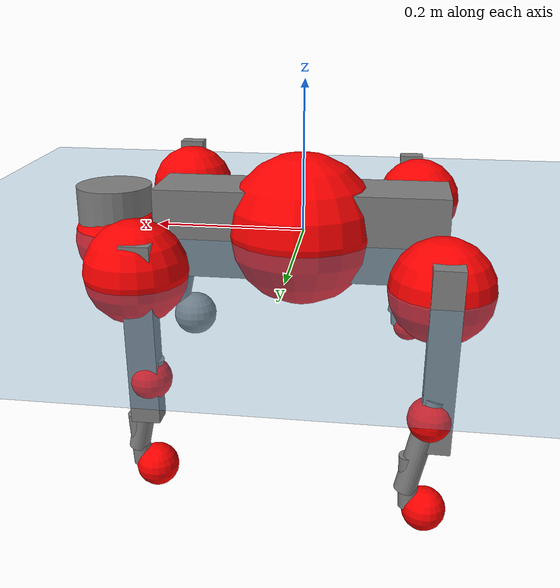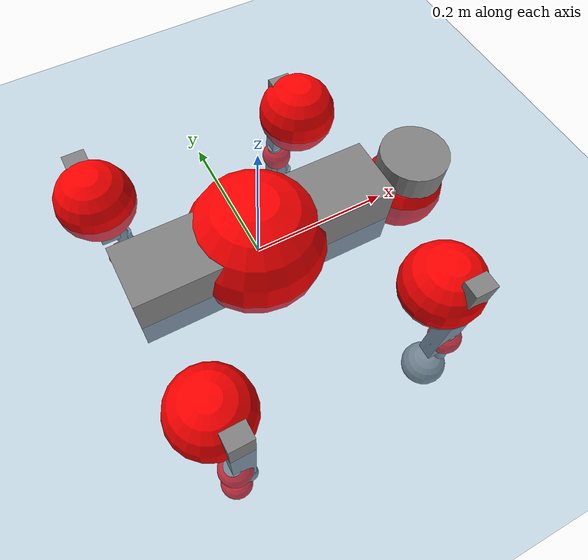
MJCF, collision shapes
<mujoco model="go2">
  <compiler angle="radian" assetdir="assets" balanceinertia="true" inertiafromgeom="false"/>

  <option timestep="0.005" density="1.2" viscosity="2e-05"/>

  <size nkey="1"/>

  <visual>
    <quality shadowsize="8192"/>
    <map shadowclip="0.5"/>
  </visual>

  <default>
    <default class="/">
      <geom contype="0" conaffinity="0" group="1" solref="-1000 -80"/>
      <site size="0.01 0.005 0.005" group="5"/>
      <general forcelimited="true" biastype="affine" gainprm="20" biasprm="0 -20 -0.5"/>
      <default class="go2">
        <joint armature="0.01" damping="0.01" frictionloss="0.2"/>
        <geom condim="1" margin="0.001"/>
        <default class="visual">
          <geom type="mesh" group="2"/>
        </default>
        <default class="collision">
          <geom group="3"/>
          <default class="foot">
            <geom size="0.022 0 0" condim="6" priority="1" friction="0.8 0.02 0.01" solimp="0.015 1 0.022"/>
          </default>
        </default>
        <default class="reward_collision_sphere">
          <geom group="5" rgba="1 0 0 1"/>
        </default>
      </default>
    </default>
  </default>

  <asset>
    <texture type="skybox" colorspace="auto" name="//unnamed_texture_0" builtin="gradient" rgb1="0.95 0.95 0.95" rgb2="0.95 0.95 0.95" width="100" height="600"/>
    <texture type="2d" colorspace="auto" name="texplane" builtin="checker" rgb1="0.345 0.575 0.748" rgb2="0.345 0.575 0.748" markrgb="1 1 1" width="512" height="512"/>
    <material name="MatPlane" class="/" texture="texplane" texuniform="true" texrepeat="2 2" specular="0.9"/>
    <material name="metal" class="/" rgba="0.9 0.95 0.95 1"/>
    <material name="black" class="/" rgba="0 0 0 1"/>
    <material name="white" class="/"/>
    <material name="gray" class="/" rgba="0.671705 0.692426 0.77427 1"/>
    <mesh name="base_0" class="/" file="base_0.obj"/>
    <mesh name="base_1" class="/" file="base_1.obj"/>
    <mesh name="base_2" class="/" file="base_2.obj"/>
    <mesh name="base_3" class="/" file="base_3.obj"/>
    <mesh name="base_4" class="/" file="base_4.obj"/>
    <mesh name="hip_0" class="/" file="hip_0.obj"/>
    <mesh name="hip_1" class="/" file="hip_1.obj"/>
    <mesh name="thigh_0" class="/" file="thigh_0.obj"/>
    <mesh name="thigh_1" class="/" file="thigh_1.obj"/>
    <mesh name="thigh_mirror_0" class="/" file="thigh_mirror_0.obj"/>
    <mesh name="thigh_mirror_1" class="/" file="thigh_mirror_1.obj"/>
    <mesh name="calf_0" class="/" file="calf_0.obj"/>
    <mesh name="calf_1" class="/" file="calf_1.obj"/>
    <mesh name="calf_mirror_0" class="/" file="calf_mirror_0.obj"/>
    <mesh name="calf_mirror_1" class="/" file="calf_mirror_1.obj"/>
    <mesh name="foot" class="/" file="foot.obj"/>
  </asset>

  <worldbody>
    <geom name="floor" class="/" size="100 100 0.125" type="plane" group="0" material="MatPlane"/>
    <light name="toplight_shadow" class="/" pos="0 0 5" dir="0.0990148 0.0990148 -0.990148" type="directional" ambient="0.04 0.04 0.04" diffuse="0.55 0.55 0.55" specular="0.12 0.12 0.12"/>
    <light name="toplight_fill" class="/" pos="0 0 5" dir="0.0990148 0.0990148 -0.990148" type="directional" castshadow="false" ambient="0.04 0.04 0.04" diffuse="0.3 0.3 0.3" specular="0.08 0.08 0.08"/>
    <body name="trunk" childclass="go2" pos="0.000559403 0.0105977 0.00607733" quat="0.999986 0.00516029 0.00101806 -0.000860418">
      <inertial pos="0.0282129 0.0155525 -0.0139276" quat="-0.00971407 0.693166 -0.0369444 0.719765" mass="7.36024" diaginertia="0.0898874 1.21308 0.00119965"/>
      <joint name="//unnamed_joint_0" type="free" armature="0" damping="0" frictionloss="0"/>
      <geom name="//unnamed_geom_1" class="visual" material="black" mesh="base_0"/>
      <geom name="//unnamed_geom_2" class="visual" material="black" mesh="base_1"/>
      <geom name="//unnamed_geom_3" class="visual" material="black" mesh="base_2"/>
      <geom name="//unnamed_geom_4" class="visual" material="white" mesh="base_3"/>
      <geom name="//unnamed_geom_5" class="visual" material="gray" mesh="base_4"/>
      <geom name="trunk_1" class="collision" size="0.191102 0.0474962 0.0579098" type="box"/>
      <geom name="trunk_2" class="collision" size="0.050798 0.0457182" pos="0.256533 0 0.00546833" type="cylinder"/>
      <geom name="trunk_3" class="collision" size="0.0477502" pos="0.263734 0 -0.03281"/>
      <geom name="//unnamed_geom_9" class="reward_collision_sphere" size="0.101596"/>
      <geom name="//unnamed_geom_10" class="reward_collision_sphere" size="0.0609577" pos="0.252032 0 -0.0246075"/>
      <site name="imu" pos="-0.00951746 -0.00907004 0.0141721" size="0.0101596"/>
      <camera name="track" pos="0 -3.20187 0" quat="0.707107 0.707107 0 0" mode="trackcom"/>
      <camera name="ego_camera" pos="0.280836 0 0.0246075" quat="-0.5 -0.5 0.5 0.5"/>
      <body name="FL_hip" pos="0.171603 0.075258 -0.0024709" quat="1 0.000169817 3.98778e-05 0.000689677">
        <inertial pos="-0.00325812 0.0159005 -0.000270387" quat="0.431652 0.550259 0.49909 0.511665" mass="0.662541" diaginertia="0.000504878 0.00650836 2.25702e-05"/>
        <joint name="FL_hip_joint" pos="0 0 0" axis="0.998969 0.0106989 -0.0441083" range="-0.869744 1.12499" armature="0.0117733" damping="0.00195206" frictionloss="0.20506"/>
        <geom name="//unnamed_geom_11" class="visual" material="metal" mesh="hip_0"/>
        <geom name="//unnamed_geom_12" class="visual" material="gray" mesh="hip_1"/>
        <geom name="//unnamed_geom_13" class="collision" size="0.0467342 0.0203192" pos="0 0.128075 0" quat="0.707107 0.707107 0 0" type="cylinder"/>
        <geom name="//unnamed_geom_14" class="reward_collision_sphere" size="0.0609577" pos="0 0.112065 0"/>
        <body name="FL_thigh" pos="-0.0126085 0.144007 -0.00566984" quat="0.999968 -0.00251943 0.00424966 -0.00628889">
          <inertial pos="-0.0026577 -0.0517306 -0.0139345" quat="0.845299 0.0730234 -0.0393984 0.527811" mass="1.07143" diaginertia="0.00410751 0.0494677 4.24201e-05"/>
          <joint name="FL_thigh_joint" pos="0 0 0" axis="-0.0547983 0.998495 0.00220149" range="-1.3546 3.78187" armature="0.00201935" damping="0" frictionloss="0.296963"/>
          <geom name="//unnamed_geom_15" class="visual" material="metal" mesh="thigh_0"/>
          <geom name="//unnamed_geom_16" class="visual" material="gray" mesh="thigh_1"/>
          <geom name="//unnamed_geom_17" class="collision" size="0.1082 0.0124455 0.0172713" pos="0 0 -0.0582377" quat="0.707107 0 0.707107 0" type="box"/>
          <body name="FL_calf" pos="-0.00446118 -0.0044936 -0.116326" quat="0.999999 0.00089874 0.000142825 0.000496143">
            <inertial pos="0.0194369 0.00908549 -0.0649002" quat="0.73115 -0.0136867 0.000576414 0.682079" mass="0.261855" diaginertia="0.00100238 0.0141928 3.02549e-06"/>
            <joint name="FL_calf_joint" pos="0 0 0" axis="0.0245136 0.999494 -0.0202466" range="-3.04476 -1.08344" armature="0.0152494" damping="0.0763324" frictionloss="0.138882"/>
            <geom name="//unnamed_geom_18" class="visual" material="gray" mesh="calf_0"/>
            <geom name="//unnamed_geom_19" class="visual" material="black" mesh="calf_1"/>
            <geom name="FL_calf0" class="collision" size="0.0121915 0.0609577" pos="0.00720092 0 -0.03281" quat="0.994493 0 -0.104807 0" type="cylinder"/>
            <geom name="//unnamed_geom_21" class="collision" size="0.0111756 0.0330187" pos="0.0180023 0 -0.0809313" quat="0.999688 0 0.0249974 0" type="cylinder"/>
            <geom name="//unnamed_geom_22" class="visual" pos="0 0 -0.116475" quat="1 0 0 0" material="black" mesh="foot"/>
            <geom name="FL_foot" class="foot" size="0.0248357" pos="-0.00180023 0 -0.116475"/>
            <geom name="//unnamed_geom_24" class="reward_collision_sphere" size="0.025399"/>
            <geom name="//unnamed_geom_25" class="reward_collision_sphere" size="0.025399" pos="-0.00180023 0 -0.116475"/>
            <site name="FL_foot" class="foot" pos="-0.00180023 0 -0.116475" size="0.0101596"/>
          </body>
        </body>
      </body>
      <body name="FR_hip" pos="0.18995 -0.0664168 0.00868032" quat="0.999997 0.00209522 -0.00100747 -0.000472584">
        <inertial pos="-0.00139933 -0.010293 0.00767846" quat="0.491729 0.498687 0.552495 0.451955" mass="0.766497" diaginertia="0.000589556 0.00627368 2.13345e-05"/>
        <joint name="FR_hip_joint" pos="0 0 0" axis="0.998926 -0.0453672 -0.00946002" stiffness="0.0819441" range="-1.09998 0.781992" armature="0.0137501" damping="0.00628972" frictionloss="0.145354"/>
        <geom name="//unnamed_geom_26" class="visual" pos="0 9.1829e-09 3.93873e-07" quat="4.63268e-05 1 0 0" material="metal" mesh="hip_0"/>
        <geom name="//unnamed_geom_27" class="visual" pos="0 1.48866e-08 -9.74199e-07" quat="4.63268e-05 1 0 0" material="gray" mesh="hip_1"/>
        <geom name="//unnamed_geom_28" class="collision" size="0.0467342 0.0203192" pos="0 -0.128075 0" quat="0.707107 0.707107 0 0" type="cylinder"/>
        <geom name="//unnamed_geom_29" class="reward_collision_sphere" size="0.0609577" pos="0 -0.112065 0"/>
        <body name="FR_thigh" pos="0.00737596 -0.151378 0.0137439" quat="1 -1.04481e-05 -0.000970737 0.000162958">
          <inertial pos="-0.0119172 0.0459618 -0.0323817" quat="0.561134 -0.0506828 0.0779852 0.822483" mass="1.11087" diaginertia="0.00394759 0.0610246 4.26249e-05"/>
          <joint name="FR_thigh_joint" pos="0 0 0" axis="-0.0136721 -0.999873 -0.00815543" range="-3.46954 1.43871" armature="0.0165602" damping="0" frictionloss="0.304687"/>
          <geom name="//unnamed_geom_30" class="visual" material="metal" mesh="thigh_mirror_0"/>
          <geom name="//unnamed_geom_31" class="visual" material="gray" mesh="thigh_mirror_1"/>
          <geom name="//unnamed_geom_32" class="collision" size="0.1082 0.0124455 0.0172713" pos="0 0 -0.0582377" quat="0.707107 0 0.707107 0" type="box"/>
          <body name="FR_calf" pos="0.00793404 -0.000999386 -0.130413" quat="0.999997 0.00070493 3.81243e-05 0.00222212">
            <inertial pos="0.0156963 -0.00943616 -0.0803217" quat="0.67697 -0.00066792 -0.00629718 0.735984" mass="0.203294" diaginertia="0.000768343 0.0106216 2.33669e-06"/>
            <joint name="FR_calf_joint" pos="0 0 0" axis="0.011699 -0.999922 -0.00431453" range="0.708888 2.61291" armature="0.0118142" damping="0.0856771" frictionloss="0.272825"/>
            <geom name="//unnamed_geom_33" class="visual" material="gray" mesh="calf_mirror_0"/>
            <geom name="//unnamed_geom_34" class="visual" material="black" mesh="calf_mirror_1"/>
            <geom name="FR_calf0" class="collision" size="0.0132075 0.0609577" pos="0.00900115 0 -0.03281" quat="0.995004 0 -0.0998334 0" type="cylinder"/>
            <geom name="//unnamed_geom_36" class="collision" size="0.0111756 0.0330187" pos="0.0180023 0 -0.0809313" quat="0.999688 0 0.0249974 0" type="cylinder"/>
            <geom name="//unnamed_geom_37" class="visual" pos="0 0 -0.116475" quat="1 0 0 0" material="black" mesh="foot"/>
            <geom name="FR_foot" class="foot" size="0.0356453" pos="-0.00180023 0 -0.116475"/>
            <geom name="//unnamed_geom_39" class="reward_collision_sphere" size="0.025399"/>
            <geom name="//unnamed_geom_40" class="reward_collision_sphere" size="0.025399" pos="-0.00180023 0 -0.116475"/>
            <site name="FR_foot" class="foot" pos="-0.00180023 0 -0.116475" size="0.0101596"/>
          </body>
        </body>
      </body>
      <body name="RL_hip" pos="-0.175959 0.0659378 -0.0117149" quat="1 -0.000286929 -0.000375982 -0.000466515">
        <inertial pos="0.000499189 0.00778103 -0.00993245" quat="0.51855 0.50056 0.501228 0.478869" mass="0.931786" diaginertia="0.00060006 0.00755374 2.25805e-05"/>
        <joint name="RL_hip_joint" pos="0 0 0" axis="-0.999307 -0.0249327 -0.0276537" range="-1.30924 1.18031" armature="0.0125328" damping="0.0129257" frictionloss="0.081923"/>
        <geom name="//unnamed_geom_41" class="visual" pos="-3.07764e-09 0 -6.03289e-07" quat="4.63268e-05 0 1 0" material="metal" mesh="hip_0"/>
        <geom name="//unnamed_geom_42" class="visual" pos="-4.98923e-09 0 -5.35031e-07" quat="4.63268e-05 0 1 0" material="gray" mesh="hip_1"/>
        <geom name="//unnamed_geom_43" class="collision" size="0.0467342 0.0203192" pos="0 0.128075 0" quat="0.707107 0.707107 0 0" type="cylinder"/>
        <geom name="//unnamed_geom_44" class="reward_collision_sphere" size="0.0609577" pos="0 0.112065 0"/>
        <body name="RL_thigh" pos="-0.00215543 0.161301 -0.00522434" quat="0.999973 0.00472089 -0.00473277 -0.00298653">
          <inertial pos="-0.00458122 -0.0524755 -0.024412" quat="0.853241 0.114761 -0.00547122 0.508705" mass="1.42581" diaginertia="0.00387251 0.0536471 3.5194e-05"/>
          <joint name="RL_thigh_joint" pos="0 0 0" axis="0.0793949 0.996805 0.00875535" stiffness="0.0137425" range="-0.462739 4.56462" armature="0.00482233" damping="0" frictionloss="0.297323"/>
          <geom name="//unnamed_geom_45" class="visual" material="metal" mesh="thigh_0"/>
          <geom name="//unnamed_geom_46" class="visual" material="gray" mesh="thigh_1"/>
          <geom name="//unnamed_geom_47" class="collision" size="0.1082 0.0124455 0.0172713" pos="0 0 -0.0582377" quat="0.707107 0 0.707107 0" type="box"/>
          <body name="RL_calf" pos="0.00777172 0.00288499 -0.127524" quat="0.99999 0.00154886 -0.00334948 -0.00254411">
            <inertial pos="0.0054048 -0.0137683 -0.0749599" quat="0.705019 0.00622215 -0.00833906 0.709112" mass="0.259049" diaginertia="0.000955739 0.0167519 2.84685e-06"/>
            <joint name="RL_calf_joint" pos="0 0 0" axis="0.00239941 0.99999 0.00364746" range="-3.03564 -0.835897" armature="0.00198315" damping="0" frictionloss="0.307444"/>
            <geom name="//unnamed_geom_48" class="visual" material="gray" mesh="calf_0"/>
            <geom name="//unnamed_geom_49" class="visual" material="black" mesh="calf_1"/>
            <geom name="RL_calf0" class="collision" size="0.0132075 0.0609577" pos="0.00900115 0 -0.03281" quat="0.995004 0 -0.0998334 0" type="cylinder"/>
            <geom name="//unnamed_geom_51" class="collision" size="0.0111756 0.0330187" pos="0.0180023 0 -0.0809313" quat="0.999688 0 0.0249974 0" type="cylinder"/>
            <geom name="//unnamed_geom_52" class="visual" pos="0 0 -0.116475" quat="1 0 0 0" material="black" mesh="foot"/>
            <geom name="RL_foot" class="foot" size="0.0227704" pos="-0.00180023 0 -0.116475"/>
            <geom name="//unnamed_geom_54" class="reward_collision_sphere" size="0.025399"/>
            <geom name="//unnamed_geom_55" class="reward_collision_sphere" size="0.025399" pos="-0.00180023 0 -0.116475"/>
            <site name="RL_foot" class="foot" pos="-0.00180023 0 -0.116475" size="0.0101596"/>
          </body>
        </body>
      </body>
      <body name="RR_hip" pos="-0.158481 -0.075503 -0.00520613" quat="0.999966 -0.0052948 -0.00144321 0.00619262">
        <inertial pos="0.00301973 0.00292455 0.00310491" quat="0.499856 0.49582 0.498407 0.505863" mass="0.778638" diaginertia="0.0005841 0.00641247 2.05467e-05"/>
        <joint name="RR_hip_joint" pos="0 0 0" axis="-0.999941 -0.010048 0.00411908" range="-0.958613 0.83212" armature="0.00284469" damping="0.0165987" frictionloss="0.102632"/>
        <geom name="//unnamed_geom_56" class="visual" pos="3.1019e-09 9.1829e-09 -9.97162e-07" quat="2.14617e-09 4.63268e-05 4.63268e-05 -1" material="metal" mesh="hip_0"/>
        <geom name="//unnamed_geom_57" class="visual" pos="4.92921e-09 1.48866e-08 4.39168e-07" quat="2.14617e-09 4.63268e-05 4.63268e-05 -1" material="gray" mesh="hip_1"/>
        <geom name="//unnamed_geom_58" class="collision" size="0.0467342 0.0203192" pos="0 -0.128075 0" quat="0.707107 0.707107 0 0" type="cylinder"/>
        <geom name="//unnamed_geom_59" class="reward_collision_sphere" size="0.0609577" pos="0 -0.112065 0"/>
        <body name="RR_thigh" pos="0.0108871 -0.164936 0.00638456" quat="0.999993 0.0030228 0.000702949 -0.00198182">
          <inertial pos="-0.00335764 0.0474027 -0.015552" quat="0.547713 -0.0331712 0.0966584 0.830402" mass="1.04988" diaginertia="0.00341863 0.0618652 4.56011e-05"/>
          <joint name="RR_thigh_joint" pos="0 0 0" axis="0.00062238 -1 0.000562372" range="-4.57064 0.199339" armature="0.0180846" damping="0" frictionloss="0.224778"/>
          <geom name="//unnamed_geom_60" class="visual" material="metal" mesh="thigh_mirror_0"/>
          <geom name="//unnamed_geom_61" class="visual" material="gray" mesh="thigh_mirror_1"/>
          <geom name="//unnamed_geom_62" class="collision" size="0.1082 0.0124455 0.0172713" pos="0 0 -0.0582377" quat="0.707107 0 0.707107 0" type="box"/>
          <body name="RR_calf" pos="-0.00951425 -0.00150841 -0.124195" quat="0.999999 -0.000657219 0.000705822 0.000898858">
            <inertial pos="0.0150869 -0.00237032 -0.0781953" quat="0.706094 -0.00564788 0.000360657 0.708096" mass="0.221677" diaginertia="0.000824927 0.0139042 2.70848e-06"/>
            <joint name="RR_calf_joint" pos="0 0 0" axis="0.01455 -0.998215 -0.0579157" range="0.563095 2.55557" armature="0.0123997" damping="0.0161016" frictionloss="0.110305"/>
            <geom name="//unnamed_geom_63" class="visual" material="gray" mesh="calf_mirror_0"/>
            <geom name="//unnamed_geom_64" class="visual" material="black" mesh="calf_mirror_1"/>
            <geom name="RR_calf0" class="collision" size="0.0132075 0.0609577" pos="0.00900115 0 -0.03281" quat="0.995004 0 -0.0998334 0" type="cylinder"/>
            <geom name="//unnamed_geom_66" class="collision" size="0.0111756 0.0330187" pos="0.0180023 0 -0.0809313" quat="0.999688 0 0.0249974 0" type="cylinder"/>
            <geom name="//unnamed_geom_67" class="visual" pos="0 0 -0.116475" quat="1 0 0 0" material="black" mesh="foot"/>
            <geom name="RR_foot" class="foot" size="0.00864323" pos="-0.00180023 0 -0.116475"/>
            <geom name="//unnamed_geom_69" class="reward_collision_sphere" size="0.025399"/>
            <geom name="//unnamed_geom_70" class="reward_collision_sphere" size="0.025399" pos="-0.00180023 0 -0.116475"/>
            <site name="RR_foot" class="foot" pos="-0.00180023 0 -0.116475" size="0.0101596"/>
          </body>
        </body>
      </body>
    </body>
  </worldbody>

  <contact>
    <pair class="/" geom1="floor" geom2="FL_foot" name="//unnamed_contact_0"/>
    <pair class="/" geom1="floor" geom2="FR_foot" name="//unnamed_contact_1"/>
    <pair class="/" geom1="floor" geom2="RL_foot" name="//unnamed_contact_2"/>
    <pair class="/" geom1="floor" geom2="RR_foot" name="//unnamed_contact_3"/>
  </contact>

  <actuator>
    <general name="FL_hip" class="/" joint="FL_hip_joint" forcerange="-16.7497 16.7497" gainprm="21.2785" biasprm="0 -21.2785 -0.482833"/>
    <general name="FL_thigh" class="/" joint="FL_thigh_joint" forcerange="-23.7535 23.7535" gainprm="21.2785" biasprm="0 -21.2785 -0.482833"/>
    <general name="FL_calf" class="/" joint="FL_calf_joint" forcerange="-43.4599 43.4599" gainprm="21.2785" biasprm="0 -21.2785 -0.482833"/>
    <general name="FR_hip" class="/" joint="FR_hip_joint" forcerange="-31.9128 31.9128" gainprm="21.2785" biasprm="0 -21.2785 -0.482833"/>
    <general name="FR_thigh" class="/" joint="FR_thigh_joint" forcerange="-25.2388 25.2388" gainprm="21.2785" biasprm="0 -21.2785 -0.482833"/>
    <general name="FR_calf" class="/" joint="FR_calf_joint" forcerange="-65.987 65.987" gainprm="21.2785" biasprm="0 -21.2785 -0.482833"/>
    <general name="RL_hip" class="/" joint="RL_hip_joint" forcerange="-29.7809 29.7809" gainprm="21.2785" biasprm="0 -21.2785 -0.482833"/>
    <general name="RL_thigh" class="/" joint="RL_thigh_joint" forcerange="-25.1207 25.1207" gainprm="21.2785" biasprm="0 -21.2785 -0.482833"/>
    <general name="RL_calf" class="/" joint="RL_calf_joint" forcerange="-36.6119 36.6119" gainprm="21.2785" biasprm="0 -21.2785 -0.482833"/>
    <general name="RR_hip" class="/" joint="RR_hip_joint" forcerange="-31.5965 31.5965" gainprm="21.2785" biasprm="0 -21.2785 -0.482833"/>
    <general name="RR_thigh" class="/" joint="RR_thigh_joint" forcerange="-17.7882 17.7882" gainprm="21.2785" biasprm="0 -21.2785 -0.482833"/>
    <general name="RR_calf" class="/" joint="RR_calf_joint" forcerange="-21.9143 21.9143" gainprm="21.2785" biasprm="0 -21.2785 -0.482833"/>
  </actuator>

  <sensor>
    <gyro site="imu" name="imu_angular_velocity"/>
    <velocimeter site="imu" name="imu_linear_velocity"/>
    <framelinvel objtype="site" objname="FL_foot" name="FL_foot_global_linear_velocity"/>
    <framelinvel objtype="site" objname="FR_foot" name="FR_foot_global_linear_velocity"/>
    <framelinvel objtype="site" objname="RL_foot" name="RL_foot_global_linear_velocity"/>
    <framelinvel objtype="site" objname="RR_foot" name="RR_foot_global_linear_velocity"/>
  </sensor>

  <keyframe>
    <key name="home" qpos="0 0 0.325 1 0 0 0 0.1 0.8 -1.5 -0.1 -0.8 1.5 -0.1 0.8 -1.5 0.1 -0.8 1.5"/>
  </keyframe>
</mujoco>
